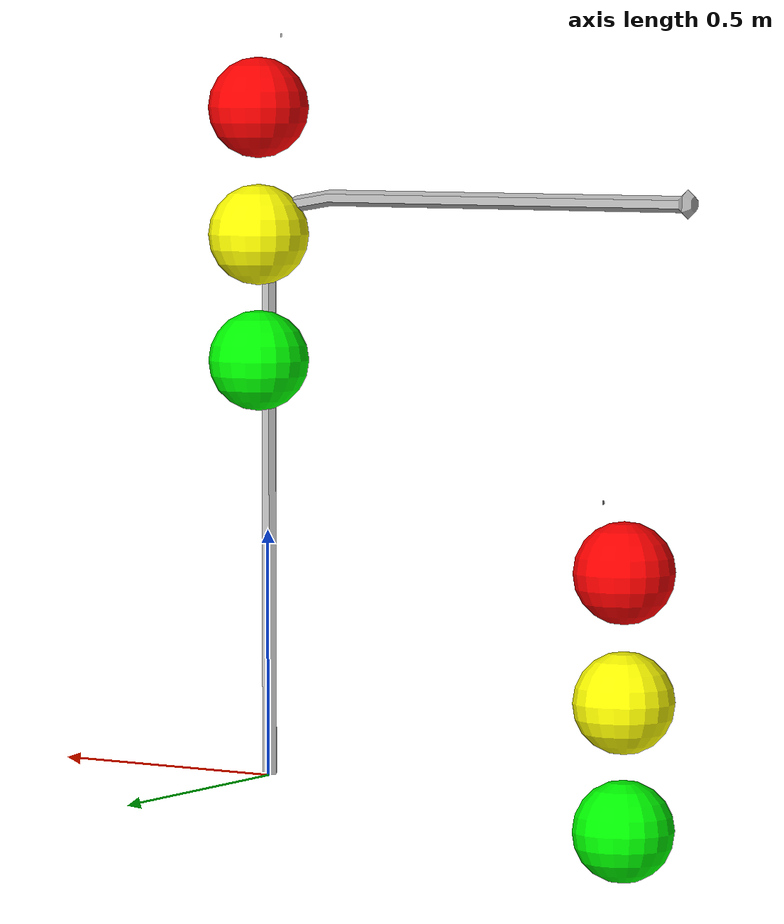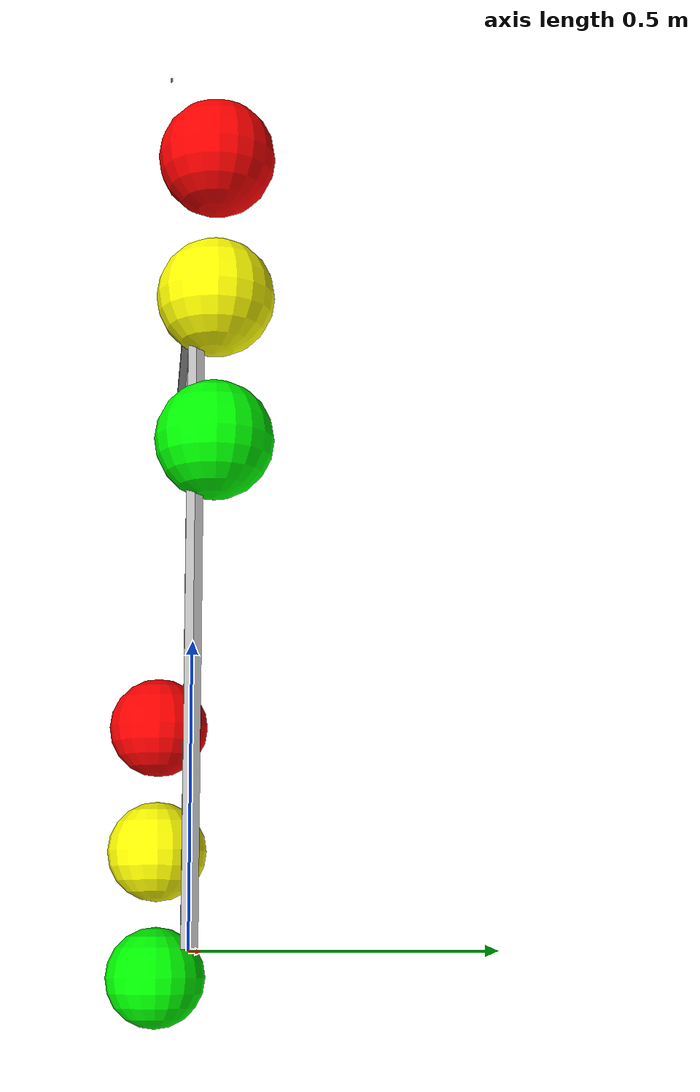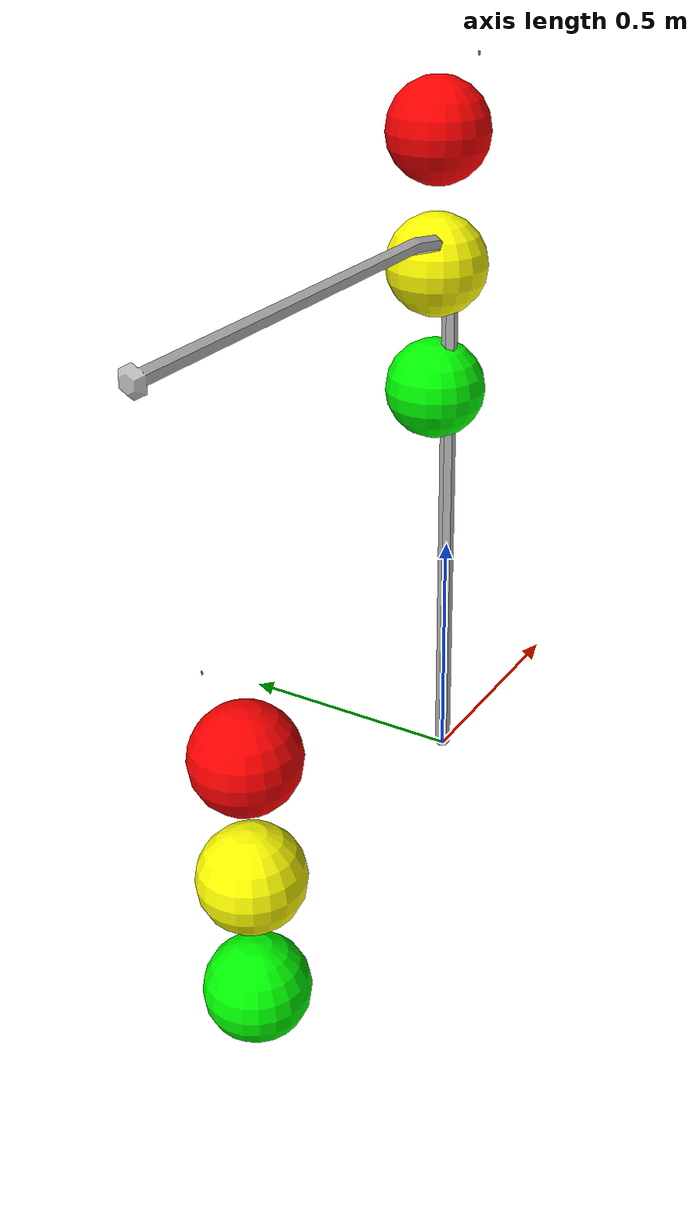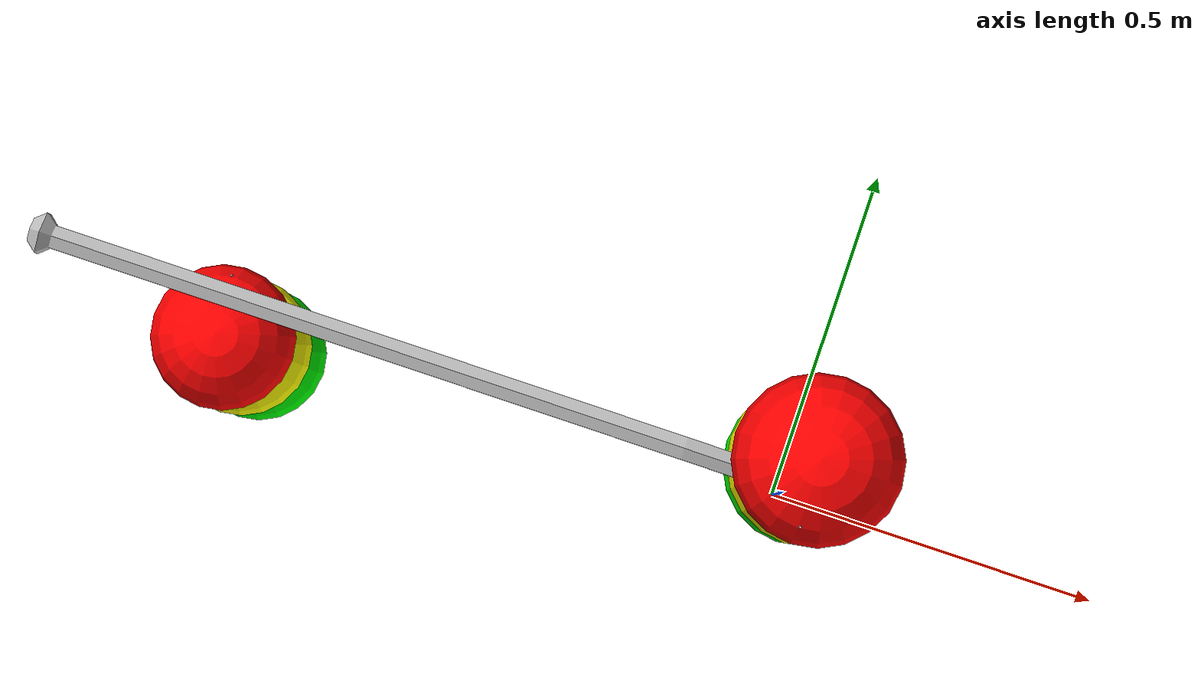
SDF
<?xml version="1.0" ?>
<sdf version="1.6">
  <model name="stop_light_post">
    <static>true</static>
    <link name="link">

      <collision name="post">
        <geometry>
          <mesh>
            <uri>model://stop_light_post/meshes/stop_light_post.obj</uri>
            <scale>0.002 0.002 0.002</scale>
          </mesh>
        </geometry>
      </collision>

      <visual name="post">
        <geometry>
          <mesh>
            <uri>model://stop_light_post/meshes/stop_light_post.obj</uri>
            <scale>0.002 0.002 0.002</scale>
          </mesh>
        </geometry>
      </visual>

    </link>

    <include>
      <name>right_light</name>
      <pose>0 -0.05 1.50 0 0 3.14</pose>
      <uri>model://stop_light</uri>
    </include>

    <include>
      <name>center_light</name>
      <pose>-0.8 0.04 0.6 0 0 0</pose>
      <uri>model://stop_light</uri>
    </include>

  </model>
</sdf>

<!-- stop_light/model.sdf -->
<sdf version="1.6">
  <model name="stop_light">

    <static>true</static>

    <link name="link">

      <collision name="collision">
        <geometry>
          <mesh>
            <uri>model://stop_light/meshes/stop_light.obj</uri>
            <scale>0.001 0.001 0.001</scale>
          </mesh>
        </geometry>
      </collision>

      <visual name="frame">
        <geometry>
          <mesh>
            <uri>model://stop_light/meshes/stop_light.obj</uri>
            <scale>0.0001 0.0001 0.0001</scale>
          </mesh>
        </geometry>
      </visual>

      <visual name="red">
        <pose>-0.001123 -0.082251 -0.147514 0 0 0</pose>
        <geometry>
          <sphere>
            <radius>0.1012</radius>
          </sphere>
        </geometry>
        <material>
          <script>
            <uri>model://stop_light/materials/scripts/</uri>
            <uri>model://stop_light/materials/textures/</uri>
            <name>StopLight/Light</name>
          </script>
          <ambient>1 0 0 1</ambient>
          <specular>1 0 0 1</specular>
          <!-- Turn a light on by uncommenting emissive -->
        </material>
      </visual>

      <visual name="yellow">
        <pose>-0.001123 -0.082251 -0.402 0 0 0</pose>
        <geometry>
          <sphere>
            <radius>0.1012</radius>
          </sphere>
        </geometry>
        <material>
          <script>
            <uri>model://stop_light/materials/scripts/</uri>
            <uri>model://stop_light/materials/textures/</uri>
            <name>StopLight/Light</name>
          </script>
          <ambient>1 1 0 1</ambient>
          <specular>1 1 0 1</specular>
        </material>
      </visual>

      <visual name="green">
        <pose>-0.001123 -0.082251 -0.655 0 0 0</pose>
        <geometry>
          <sphere>
            <radius>0.1012</radius>
          </sphere>
        </geometry>
        <material>
          <script>
            <uri>model://stop_light/materials/scripts/</uri>
            <uri>model://stop_light/materials/textures/</uri>
            <name>StopLight/Light</name>
          </script>
          <ambient>0 1 0 1</ambient>
          <specular>0 1 0 1</specular>
        </material>
      </visual>

    </link>
  </model>
</sdf>
